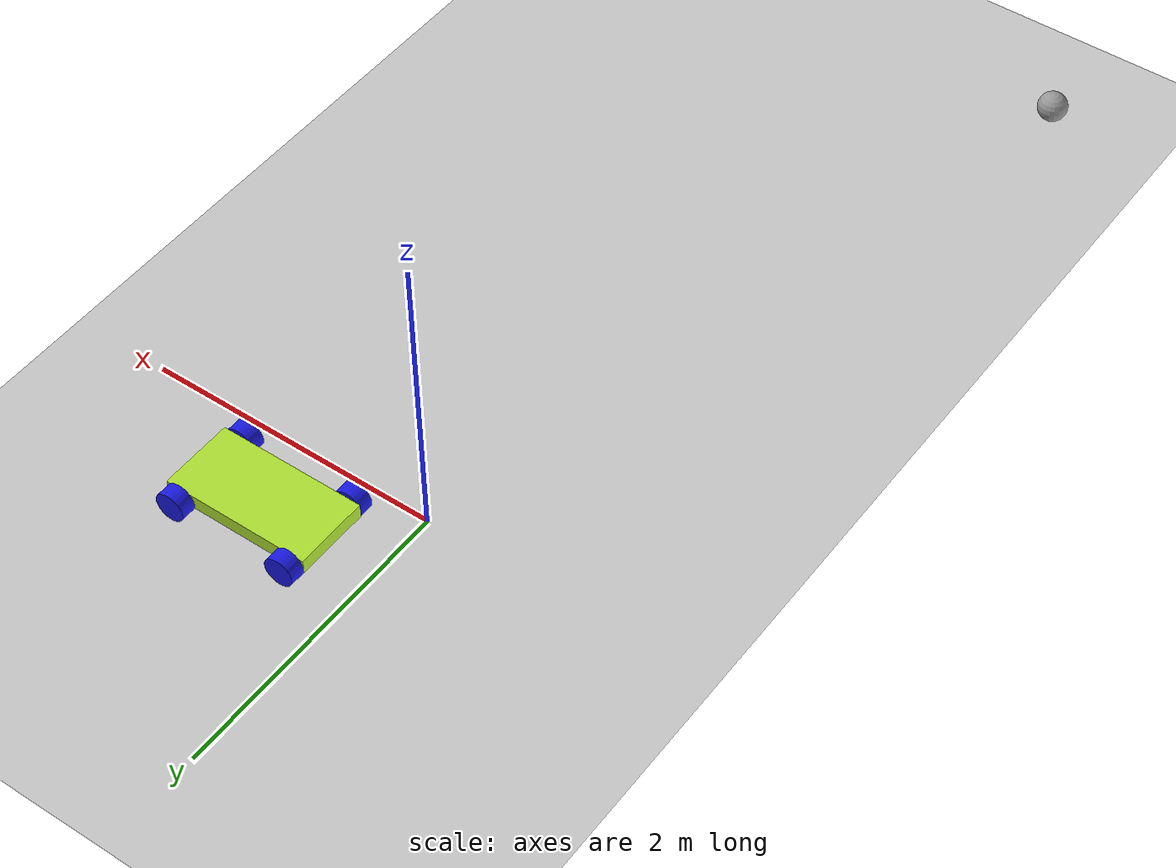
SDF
<sdf version="1.6">
 <world name="default">
  <model name="ground_plane">
   <static>1</static>
   <link name="link">
    <collision name="collision">
     <geometry><plane><normal>0 0 1</normal><size>100 100</size></plane></geometry>
     <surface>
      <contact><collide_bitmask>65535</collide_bitmask></contact>
      <friction><ode><mu>100</mu><mu2>50</mu2></ode></friction>
     </surface>
    </collision>
    <visual name="visual">
     <cast_shadows>0</cast_shadows>
     <geometry><plane><normal>0 0 1</normal><size>100 100</size></plane></geometry>
     <material>
      <script><uri>file://media/materials/scripts/gazebo.material</uri><name>Gazebo/Grey</name></script>
     </material>
    </visual>
   </link>
  </model>
  <model name="mymobilerobot_0_clone">
   <link name="link_0">
    <inertial>
     <mass>1</mass>
     <inertia>
      <ixx>0.166667</ixx>
      <ixy>0</ixy>
      <ixz>0</ixz>
      <iyy>0.166667</iyy>
      <iyz>0</iyz>
      <izz>0.166667</izz>
     </inertia>
    </inertial>
    <pose>-0 -0.003 -0.2 0 -0 0</pose>
    <visual name="visual">
     <geometry><box><size>1 0.5 0.1</size></box></geometry>
     <material>
      <lighting>1</lighting>
      <script><uri>file://media/materials/scripts/gazebo.material</uri><name>Gazebo/Grey</name></script>
      <shader type="pixel"><normal_map>__default__</normal_map></shader>
      <ambient>0.7 0.9 0.2 1</ambient>
      <diffuse>0.7 0.7 0.7 1</diffuse>
      <specular>0.01 0.01 0.01 1</specular>
      <emissive>0 0 0 1</emissive>
     </material>
    </visual>
    <collision name="collision">
     <geometry><box><size>1 0.5 0.1</size></box></geometry>
     <surface>
      <friction>
       <ode><mu>1</mu><mu2>1</mu2><fdir1>0 0 0</fdir1><slip1>0</slip1><slip2>0</slip2></ode>
       <torsional>
        <coefficient>1</coefficient>
        <patch_radius>0</patch_radius>
        <surface_radius>0</surface_radius>
        <use_patch_radius>1</use_patch_radius>
        <ode><slip>0</slip></ode>
       </torsional>
      </friction>
      <bounce><restitution_coefficient>0</restitution_coefficient><threshold>1e+06</threshold></bounce>
      <contact>
       <collide_without_contact>0</collide_without_contact>
       <collide_without_contact_bitmask>1</collide_without_contact_bitmask>
       <collide_bitmask>1</collide_bitmask>
       <ode>
        <soft_cfm>0</soft_cfm>
        <soft_erp>0.2</soft_erp>
        <kp>1e+13</kp>
        <kd>1</kd>
        <max_vel>0.01</max_vel>
        <min_depth>0</min_depth>
       </ode>
       <bullet>
        <split_impulse>1</split_impulse>
        <split_impulse_penetration_threshold>-0.01</split_impulse_penetration_threshold>
        <soft_cfm>0</soft_cfm>
        <soft_erp>0.2</soft_erp>
        <kp>1e+13</kp>
        <kd>1</kd>
       </bullet>
      </contact>
     </surface>
    </collision>
   </link>
   <link name="link_1">
    <inertial>
     <mass>1</mass>
     <inertia><ixx>0.145833</ixx><ixy>0</ixy><ixz>0</ixz><iyy>0.145833</iyy><iyz>0</iyz><izz>0.125</izz></inertia>
    </inertial>
    <pose>-0.4 -0.303012 -0.22 1.5707 -0 0</pose>
    <visual name="visual">
     <geometry><cylinder><radius>0.1</radius><length>0.1</length></cylinder></geometry>
     <material>
      <lighting>1</lighting>
      <script><uri>file://media/materials/scripts/gazebo.material</uri><name>Gazebo/Grey</name></script>
      <shader type="pixel"><normal_map>__default__</normal_map></shader>
      <ambient>0.1 0.1 0.9 1</ambient>
      <diffuse>0.7 0.7 0.7 1</diffuse>
      <specular>0.01 0.01 0.01 1</specular>
      <emissive>0 0 0 1</emissive>
     </material>
    </visual>
    <collision name="collision">
     <geometry><cylinder><radius>0.1</radius><length>0.1</length></cylinder></geometry>
     <surface>
      <friction>
       <ode><mu>1</mu><mu2>1</mu2><fdir1>0 0 0</fdir1><slip1>0</slip1><slip2>0</slip2></ode>
       <torsional>
        <coefficient>1</coefficient>
        <patch_radius>0</patch_radius>
        <surface_radius>0</surface_radius>
        <use_patch_radius>1</use_patch_radius>
        <ode><slip>0</slip></ode>
       </torsional>
      </friction>
      <bounce><restitution_coefficient>0</restitution_coefficient><threshold>1e+06</threshold></bounce>
      <contact>
       <collide_without_contact>0</collide_without_contact>
       <collide_without_contact_bitmask>1</collide_without_contact_bitmask>
       <collide_bitmask>1</collide_bitmask>
       <ode>
        <soft_cfm>0</soft_cfm>
        <soft_erp>0.2</soft_erp>
        <kp>1e+13</kp>
        <kd>1</kd>
        <max_vel>0.01</max_vel>
        <min_depth>0</min_depth>
       </ode>
       <bullet>
        <split_impulse>1</split_impulse>
        <split_impulse_penetration_threshold>-0.01</split_impulse_penetration_threshold>
        <soft_cfm>0</soft_cfm>
        <soft_erp>0.2</soft_erp>
        <kp>1e+13</kp>
        <kd>1</kd>
       </bullet>
      </contact>
     </surface>
    </collision>
   </link>
   <link name="link_1_clone">
    <inertial>
     <mass>1</mass>
     <inertia><ixx>0.145833</ixx><ixy>0</ixy><ixz>0</ixz><iyy>0.145833</iyy><iyz>0</iyz><izz>0.125</izz></inertia>
    </inertial>
    <pose>-0.4 0.29701 -0.22 1.5707 -0 0</pose>
    <visual name="visual">
     <geometry><cylinder><radius>0.1</radius><length>0.1</length></cylinder></geometry>
     <material>
      <lighting>1</lighting>
      <script><uri>file://media/materials/scripts/gazebo.material</uri><name>Gazebo/Grey</name></script>
      <shader type="pixel"><normal_map>__default__</normal_map></shader>
      <ambient>0.1 0.1 0.9 1</ambient>
      <diffuse>0.7 0.7 0.7 1</diffuse>
      <specular>0.01 0.01 0.01 1</specular>
      <emissive>0 0 0 1</emissive>
     </material>
    </visual>
    <collision name="collision">
     <geometry><cylinder><radius>0.1</radius><length>0.1</length></cylinder></geometry>
     <surface>
      <friction>
       <ode><mu>1</mu><mu2>1</mu2><fdir1>0 0 0</fdir1><slip1>0</slip1><slip2>0</slip2></ode>
       <torsional>
        <coefficient>1</coefficient>
        <patch_radius>0</patch_radius>
        <surface_radius>0</surface_radius>
        <use_patch_radius>1</use_patch_radius>
        <ode><slip>0</slip></ode>
       </torsional>
      </friction>
      <bounce><restitution_coefficient>0</restitution_coefficient><threshold>1e+06</threshold></bounce>
      <contact>
       <collide_without_contact>0</collide_without_contact>
       <collide_without_contact_bitmask>1</collide_without_contact_bitmask>
       <collide_bitmask>1</collide_bitmask>
       <ode>
        <soft_cfm>0</soft_cfm>
        <soft_erp>0.2</soft_erp>
        <kp>1e+13</kp>
        <kd>1</kd>
        <max_vel>0.01</max_vel>
        <min_depth>0</min_depth>
       </ode>
       <bullet>
        <split_impulse>1</split_impulse>
        <split_impulse_penetration_threshold>-0.01</split_impulse_penetration_threshold>
        <soft_cfm>0</soft_cfm>
        <soft_erp>0.2</soft_erp>
        <kp>1e+13</kp>
        <kd>1</kd>
       </bullet>
      </contact>
     </surface>
    </collision>
   </link>
   <link name="link_1_clone_0">
    <inertial>
     <mass>1</mass>
     <inertia><ixx>0.145833</ixx><ixy>0</ixy><ixz>0</ixz><iyy>0.145833</iyy><iyz>0</iyz><izz>0.125</izz></inertia>
    </inertial>
    <pose>0.4 -0.30301 -0.22 1.5707 -0 0</pose>
    <visual name="visual">
     <geometry><cylinder><radius>0.1</radius><length>0.1</length></cylinder></geometry>
     <material>
      <lighting>1</lighting>
      <script><uri>file://media/materials/scripts/gazebo.material</uri><name>Gazebo/Grey</name></script>
      <shader type="pixel"><normal_map>__default__</normal_map></shader>
      <ambient>0.1 0.1 0.9 1</ambient>
      <diffuse>0.7 0.7 0.7 1</diffuse>
      <specular>0.01 0.01 0.01 1</specular>
      <emissive>0 0 0 1</emissive>
     </material>
    </visual>
    <collision name="collision">
     <geometry><cylinder><radius>0.1</radius><length>0.1</length></cylinder></geometry>
     <surface>
      <friction>
       <ode><mu>1</mu><mu2>1</mu2><fdir1>0 0 0</fdir1><slip1>0</slip1><slip2>0</slip2></ode>
       <torsional>
        <coefficient>1</coefficient>
        <patch_radius>0</patch_radius>
        <surface_radius>0</surface_radius>
        <use_patch_radius>1</use_patch_radius>
        <ode><slip>0</slip></ode>
       </torsional>
      </friction>
      <bounce><restitution_coefficient>0</restitution_coefficient><threshold>1e+06</threshold></bounce>
      <contact>
       <collide_without_contact>0</collide_without_contact>
       <collide_without_contact_bitmask>1</collide_without_contact_bitmask>
       <collide_bitmask>1</collide_bitmask>
       <ode>
        <soft_cfm>0</soft_cfm>
        <soft_erp>0.2</soft_erp>
        <kp>1e+13</kp>
        <kd>1</kd>
        <max_vel>0.01</max_vel>
        <min_depth>0</min_depth>
       </ode>
       <bullet>
        <split_impulse>1</split_impulse>
        <split_impulse_penetration_threshold>-0.01</split_impulse_penetration_threshold>
        <soft_cfm>0</soft_cfm>
        <soft_erp>0.2</soft_erp>
        <kp>1e+13</kp>
        <kd>1</kd>
       </bullet>
      </contact>
     </surface>
    </collision>
   </link>
   <link name="link_1_clone_1">
    <inertial>
     <mass>1</mass>
     <inertia><ixx>0.145833</ixx><ixy>0</ixy><ixz>0</ixz><iyy>0.145833</iyy><iyz>0</iyz><izz>0.125</izz></inertia>
    </inertial>
    <pose>0.4 0.29701 -0.22 1.5707 -0 0</pose>
    <visual name="visual">
     <geometry><cylinder><radius>0.1</radius><length>0.1</length></cylinder></geometry>
     <material>
      <lighting>1</lighting>
      <script><uri>file://media/materials/scripts/gazebo.material</uri><name>Gazebo/Grey</name></script>
      <shader type="pixel"><normal_map>__default__</normal_map></shader>
      <ambient>0.1 0.1 0.9 1</ambient>
      <diffuse>0.7 0.7 0.7 1</diffuse>
      <specular>0.01 0.01 0.01 1</specular>
      <emissive>0 0 0 1</emissive>
     </material>
    </visual>
    <collision name="collision">
     <geometry><cylinder><radius>0.1</radius><length>0.1</length></cylinder></geometry>
     <surface>
      <friction>
       <ode><mu>1</mu><mu2>1</mu2><fdir1>0 0 0</fdir1><slip1>0</slip1><slip2>0</slip2></ode>
       <torsional>
        <coefficient>1</coefficient>
        <patch_radius>0</patch_radius>
        <surface_radius>0</surface_radius>
        <use_patch_radius>1</use_patch_radius>
        <ode><slip>0</slip></ode>
       </torsional>
      </friction>
      <bounce><restitution_coefficient>0</restitution_coefficient><threshold>1e+06</threshold></bounce>
      <contact>
       <collide_without_contact>0</collide_without_contact>
       <collide_without_contact_bitmask>1</collide_without_contact_bitmask>
       <collide_bitmask>1</collide_bitmask>
       <ode>
        <soft_cfm>0</soft_cfm>
        <soft_erp>0.2</soft_erp>
        <kp>1e+13</kp>
        <kd>1</kd>
        <max_vel>0.01</max_vel>
        <min_depth>0</min_depth>
       </ode>
       <bullet>
        <split_impulse>1</split_impulse>
        <split_impulse_penetration_threshold>-0.01</split_impulse_penetration_threshold>
        <soft_cfm>0</soft_cfm>
        <soft_erp>0.2</soft_erp>
        <kp>1e+13</kp>
        <kd>1</kd>
       </bullet>
      </contact>
     </surface>
    </collision>
   </link>
   <joint name="link_0_JOINT_10" type="revolute">
    <parent>link_0</parent>
    <child>link_1</child>
    <axis>
     <xyz>0 0 1</xyz>
     <limit>
      <lower>-1.79769e+308</lower>
      <upper>1.79769e+308</upper>
      <effort>-1</effort>
      <velocity>-1</velocity>
     </limit>
     <dynamics>
      <spring_reference>0</spring_reference>
      <spring_stiffness>0</spring_stiffness>
      <damping>0</damping>
      <friction>0</friction>
     </dynamics>
     <use_parent_model_frame>0</use_parent_model_frame>
    </axis>
    <physics>
     <ode><limit><cfm>0</cfm><erp>0.2</erp></limit><suspension><cfm>0</cfm><erp>0.2</erp></suspension></ode>
    </physics>
   </joint>
   <joint name="link_0_JOINT_11" type="revolute">
    <parent>link_0</parent>
    <child>link_1_clone_0</child>
    <axis>
     <xyz>0 0 1</xyz>
     <limit>
      <lower>-1.79769e+308</lower>
      <upper>1.79769e+308</upper>
      <effort>-1</effort>
      <velocity>-1</velocity>
     </limit>
     <dynamics>
      <spring_reference>0</spring_reference>
      <spring_stiffness>0</spring_stiffness>
      <damping>0</damping>
      <friction>0</friction>
     </dynamics>
     <use_parent_model_frame>0</use_parent_model_frame>
    </axis>
    <physics>
     <ode><limit><cfm>0</cfm><erp>0.2</erp></limit><suspension><cfm>0</cfm><erp>0.2</erp></suspension></ode>
    </physics>
   </joint>
   <joint name="link_0_JOINT_12" type="revolute">
    <parent>link_0</parent>
    <child>link_1_clone_1</child>
    <axis>
     <xyz>0 0 1</xyz>
     <limit>
      <lower>-1.79769e+308</lower>
      <upper>1.79769e+308</upper>
      <effort>-1</effort>
      <velocity>-1</velocity>
     </limit>
     <dynamics>
      <spring_reference>0</spring_reference>
      <spring_stiffness>0</spring_stiffness>
      <damping>0</damping>
      <friction>0</friction>
     </dynamics>
     <use_parent_model_frame>0</use_parent_model_frame>
    </axis>
    <physics>
     <ode><limit><cfm>0</cfm><erp>0.2</erp></limit><suspension><cfm>0</cfm><erp>0.2</erp></suspension></ode>
    </physics>
   </joint>
   <joint name="link_0_JOINT_9" type="revolute">
    <parent>link_0</parent>
    <child>link_1_clone</child>
    <axis>
     <xyz>0 0 1</xyz>
     <limit>
      <lower>-1.79769e+308</lower>
      <upper>1.79769e+308</upper>
      <effort>-1</effort>
      <velocity>-1</velocity>
     </limit>
     <dynamics>
      <spring_reference>0</spring_reference>
      <spring_stiffness>0</spring_stiffness>
      <damping>0</damping>
      <friction>0</friction>
     </dynamics>
     <use_parent_model_frame>0</use_parent_model_frame>
    </axis>
    <physics>
     <ode><limit><cfm>0</cfm><erp>0.2</erp></limit><suspension><cfm>0</cfm><erp>0.2</erp></suspension></ode>
    </physics>
   </joint>
   <static>0</static>
   <pose>0.787432 0.489211 0.320001 0 9e-06 6.4e-05</pose>
  </model>
  <model name="my_ball">
   <link name="link">
    <inertial>
     <mass>1</mass>
     <inertia><ixx>0.1</ixx><ixy>0</ixy><ixz>0</ixz><iyy>0.1</iyy><iyz>0</iyz><izz>0.1</izz></inertia>
    </inertial>
    <visual name="visual">
     <geometry><sphere><radius>0.1</radius></sphere></geometry>
     <material>
      <script><name>Gazebo/Grey</name><uri>file://media/materials/scripts/gazebo.material</uri></script>
      <shader type="pixel"><normal_map>__default__</normal_map></shader>
      <ambient>1 1 1 1</ambient>
      <diffuse>1 1 1 1</diffuse>
      <specular>1 1 1 1</specular>
      <emissive>0 0 0 1</emissive>
     </material>
    </visual>
    <collision name="collision">
     <geometry><sphere><radius>0.1</radius></sphere></geometry>
     <surface>
      <friction>
       <ode><mu>1</mu><mu2>1</mu2><fdir1>0 0 0</fdir1><slip1>0</slip1><slip2>0</slip2></ode>
       <torsional>
        <coefficient>1</coefficient>
        <patch_radius>0</patch_radius>
        <surface_radius>0</surface_radius>
        <use_patch_radius>1</use_patch_radius>
        <ode><slip>0</slip></ode>
       </torsional>
      </friction>
      <bounce><restitution_coefficient>0</restitution_coefficient><threshold>1e+06</threshold></bounce>
      <contact>
       <collide_without_contact>0</collide_without_contact>
       <collide_without_contact_bitmask>1</collide_without_contact_bitmask>
       <collide_bitmask>1</collide_bitmask>
       <ode>
        <soft_cfm>0</soft_cfm>
        <soft_erp>0.2</soft_erp>
        <kp>1e+13</kp>
        <kd>1</kd>
        <max_vel>0.01</max_vel>
        <min_depth>0</min_depth>
       </ode>
       <bullet>
        <split_impulse>1</split_impulse>
        <split_impulse_penetration_threshold>-0.01</split_impulse_penetration_threshold>
        <soft_cfm>0</soft_cfm>
        <soft_erp>0.2</soft_erp>
        <kp>1e+13</kp>
        <kd>1</kd>
       </bullet>
      </contact>
     </surface>
    </collision>
   </link>
   <static>0</static>
   <pose>-1.18764 -5.01125 0.1 0 -0 0</pose>
  </model>
 </world>
</sdf>
